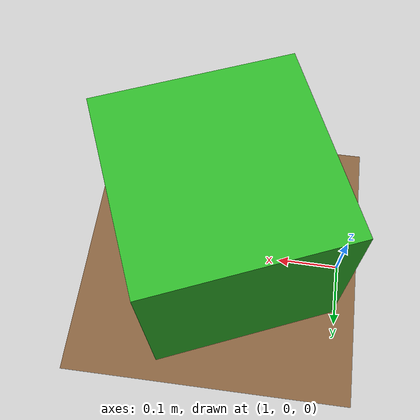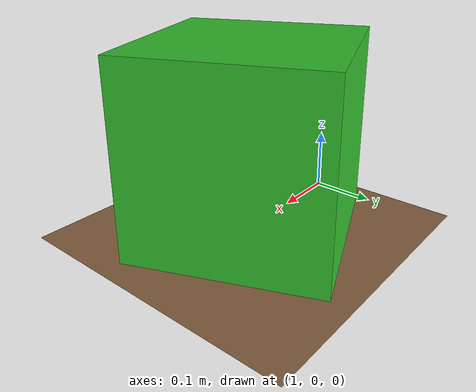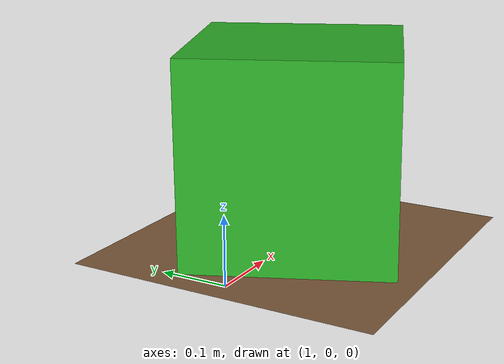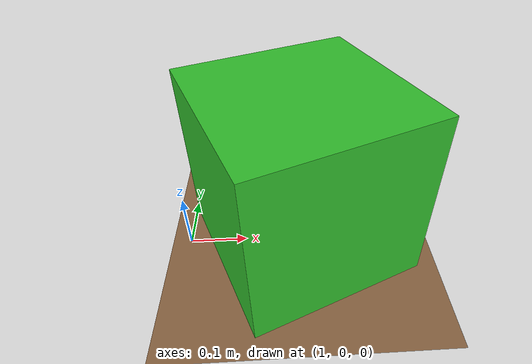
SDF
<?xml version="1.0" ?>
<sdf version="1.9">
  <world name="smoke">

    <!-- 물리 계산 간격 1ms. 1000스텝 = 시뮬 1초. -->
    <physics name="1ms" type="ignored">
      <max_step_size>0.001</max_step_size>
      <real_time_factor>1.0</real_time_factor>
    </physics>

    <plugin filename="ignition-gazebo-physics-system"
            name="ignition::gazebo::systems::Physics"/>
    <!-- 이게 카메라를 실제로 그리는 부분. 서버 안에서 별도 스레드로 돈다. -->
    <plugin filename="ignition-gazebo-sensors-system"
            name="ignition::gazebo::systems::Sensors">
      <render_engine>ogre2</render_engine>
    </plugin>
    <plugin filename="ignition-gazebo-scene-broadcaster-system"
            name="ignition::gazebo::systems::SceneBroadcaster"/>

    <!-- 햇빛. 그림자를 켜두는 게 중요하다 — 그림자가 나오면 조명 계산이
         제대로 돌고 있다는 뜻이고, 나중에 잡초를 알아보는 데 직결된다. -->
    <light type="directional" name="sun">
      <cast_shadows>true</cast_shadows>
      <pose>0 0 10 0 0 0</pose>
      <diffuse>1 1 1 1</diffuse>
      <specular>0.3 0.3 0.3 1</specular>
      <direction>-0.5 0.3 -0.9</direction>
    </light>

    <!-- 흙색 바닥. 일부러 회색을 피했다. 온통 회색인 화면은 "렌더링 실패"와
         구분이 안 되는데, 우리는 화면이 얼마나 다채로운지로 성공을 판정한다. -->
    <model name="ground">
      <static>true</static>
      <link name="link">
        <collision name="collision">
          <geometry><plane><normal>0 0 1</normal><size>20 20</size></plane></geometry>
        </collision>
        <visual name="visual">
          <geometry><plane><normal>0 0 1</normal><size>20 20</size></plane></geometry>
          <material>
            <ambient>0.35 0.25 0.16 1</ambient>
            <diffuse>0.55 0.40 0.26 1</diffuse>
            <specular>0.05 0.05 0.05 1</specular>
          </material>
        </visual>
      </link>
    </model>

    <!-- 초록 상자 (나중에 이 자리에 진짜 식물이 온다).
         이걸로 실패 3종류를 구분할 수 있다:
           흙색 위에 초록 → 성공
           새까만 화면    → 그래픽이 소프트웨어 렌더러로 흘러감
           파일이 없음    → 카메라가 아예 안 찍음 (구독자 없거나 -r 빠뜨림) -->
    <model name="target">
      <static>true</static>
      <pose>1.2 0 0.15 0 0 0.4</pose>
      <link name="link">
        <visual name="visual">
          <geometry><box><size>0.3 0.3 0.3</size></box></geometry>
          <material>
            <ambient>0.10 0.35 0.10 1</ambient>
            <diffuse>0.20 0.75 0.18 1</diffuse>
            <specular>0.2 0.2 0.2 1</specular>
          </material>
        </visual>
      </link>
    </model>

    <!-- 카메라. 높이 60cm에서 비스듬히 아래를 본다 —
         나중에 만들 포탈형 로봇의 카메라 위치와 대충 비슷하게 잡아뒀다. -->
    <model name="camera_rig">
      <static>true</static>
      <pose>0 0 0.6 0 0.5 0</pose>
      <link name="link">
        <sensor name="cam" type="camera">
          <topic>smoke/image</topic>
          <update_rate>10</update_rate>
          <always_on>1</always_on>
          <camera>
            <horizontal_fov>1.047</horizontal_fov>
            <image>
              <width>640</width>
              <height>480</height>
              <format>R8G8B8</format>
            </image>
            <clip><near>0.05</near><far>50</far></clip>
            <!-- 서버가 직접 PNG로 저장한다. ROS도, 브리지도, 별도 노드도 필요 없다 —
                 GPU 렌더링이 되는지 증명하는 데 필요한 최소한의 장치. -->
            <save enabled="true">
              <path>artifacts/smoke</path>
            </save>
          </camera>
        </sensor>
      </link>
    </model>

  </world>
</sdf>
